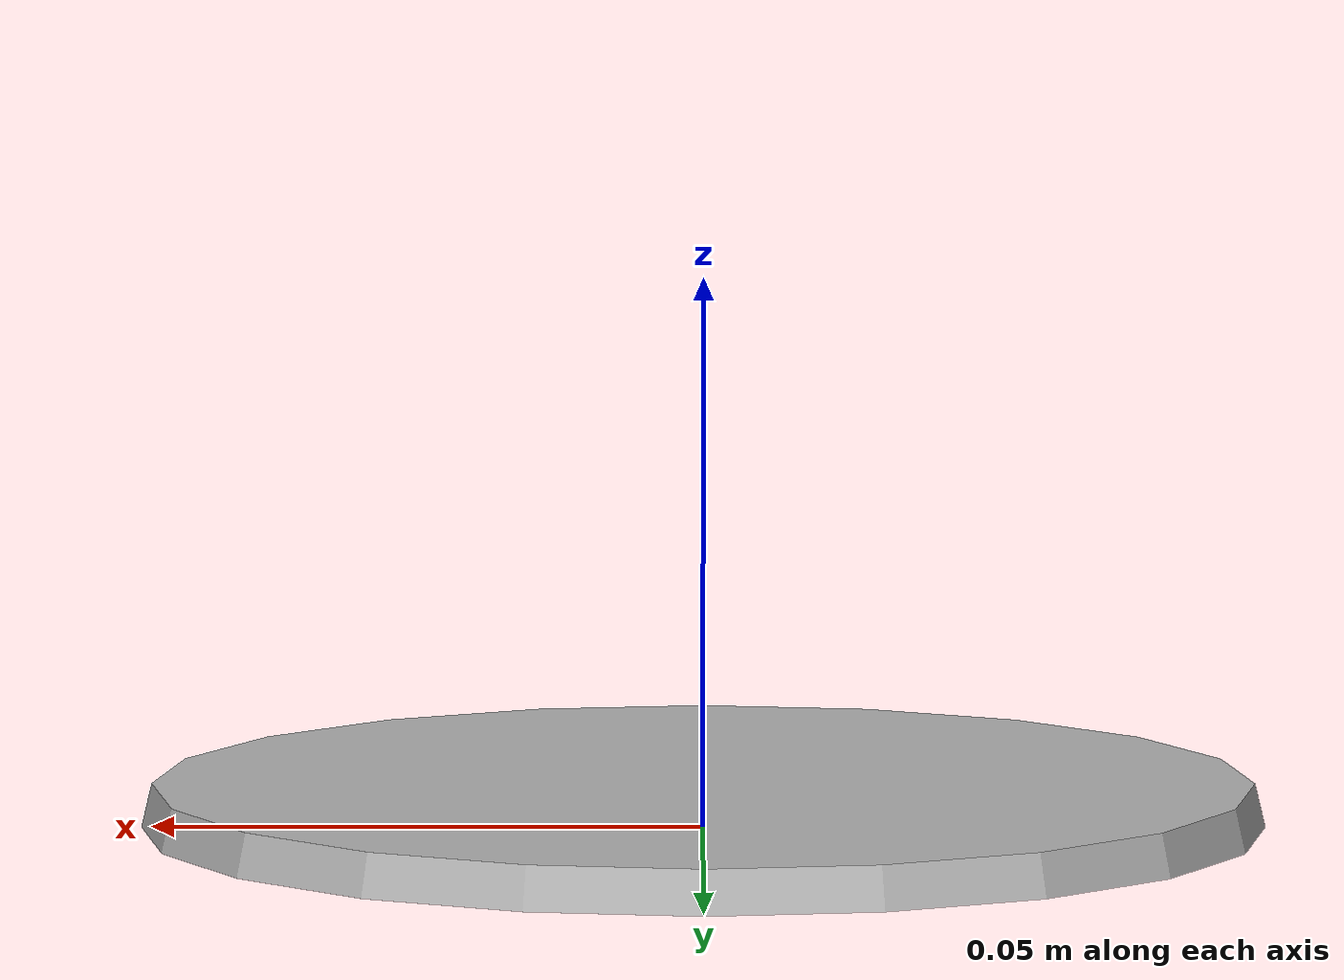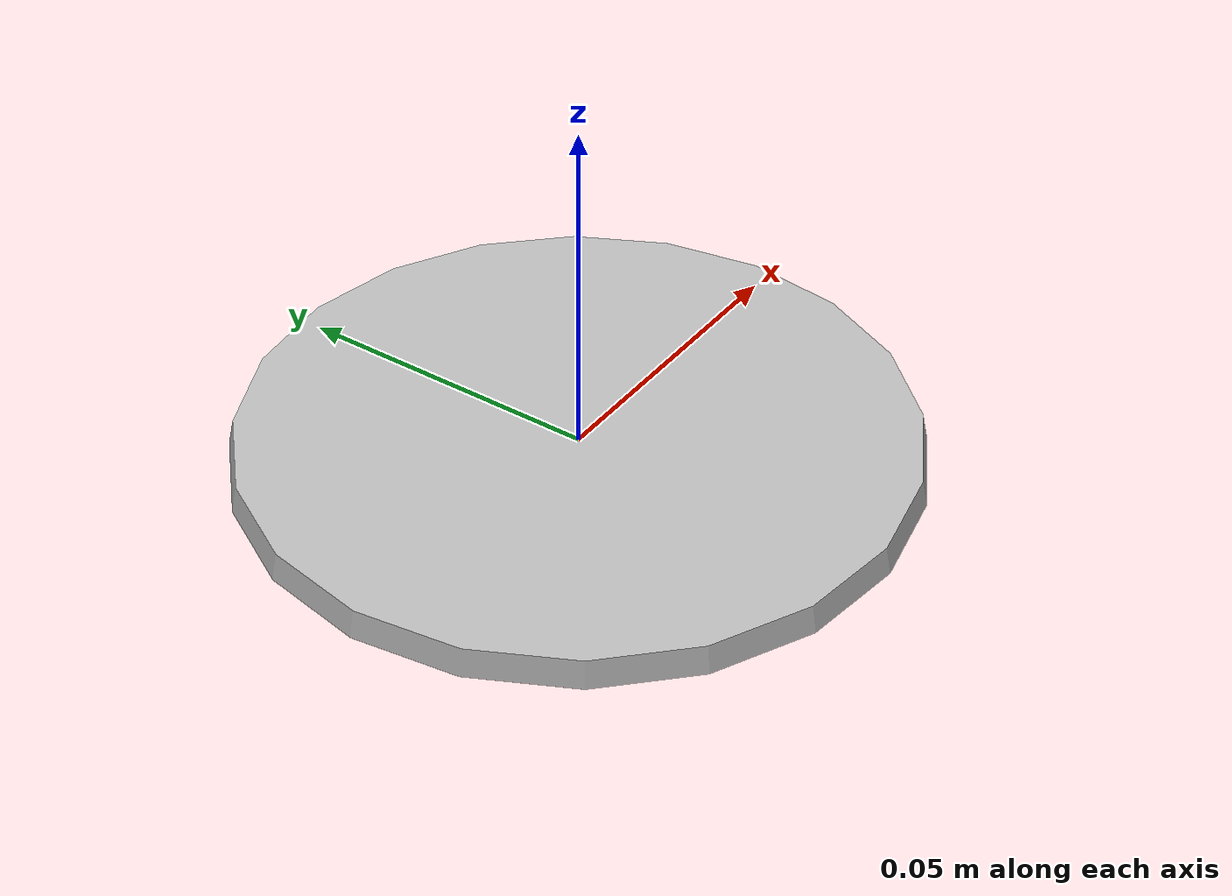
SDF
<?xml version="1.0" ?>
<sdf version="1.6">
  <model name="aws_robomaker_retail_Spotlight_01">
    <link name="link">
      <inertial>
        <mass>1</mass>
      </inertial>
      <collision name="collision">
        <geometry>
          <mesh>
            <uri>file:///home/niweshsah/py_trees1_ws/src/bookstore_world/models/aws_robomaker_retail_Spotlight_01/meshes/aws_spotlight_01_collision.DAE</uri>
            <scale>1 1 1</scale>
          </mesh>
        </geometry>
      </collision>
      <visual name="visual">
	    <geometry>
          <mesh>
            <uri>file:///home/niweshsah/py_trees1_ws/src/bookstore_world/models/aws_robomaker_retail_Spotlight_01/meshes/aws_spotlight_01_visual.DAE</uri>
          </mesh>
        </geometry>
        <meta>
          <layer>3</layer>
        </meta>
      </visual>
    </link>
	<static>1</static>
  </model>
</sdf>
